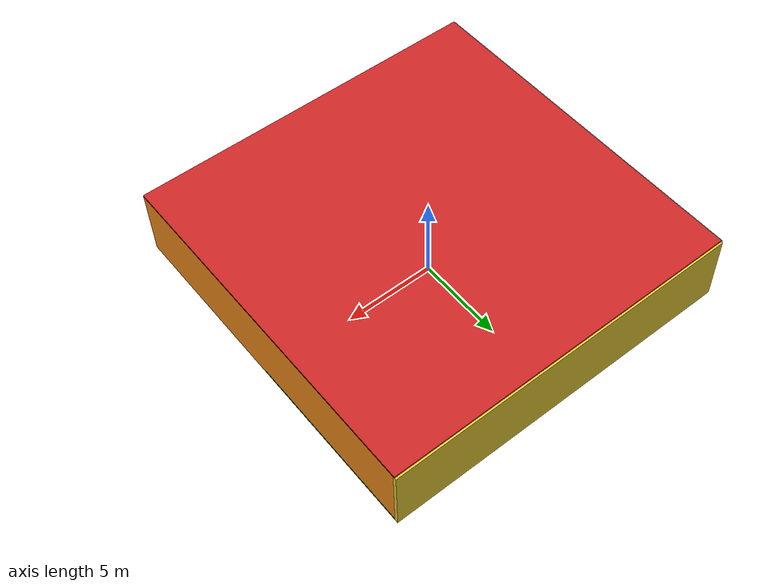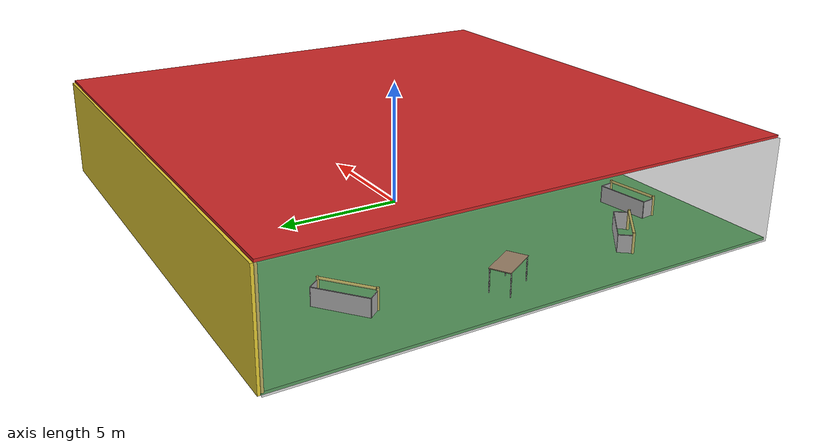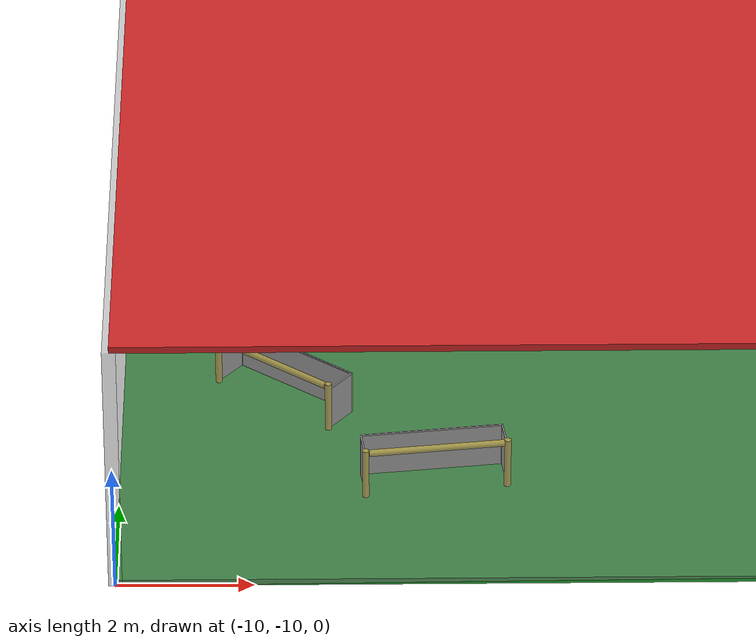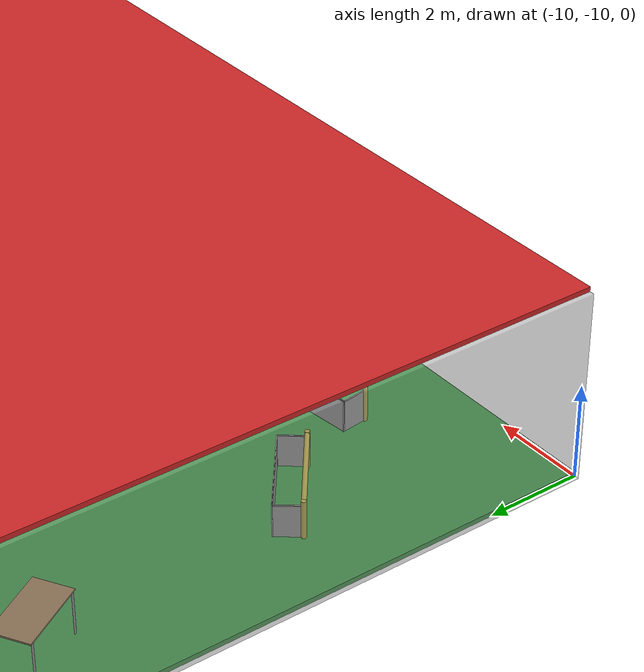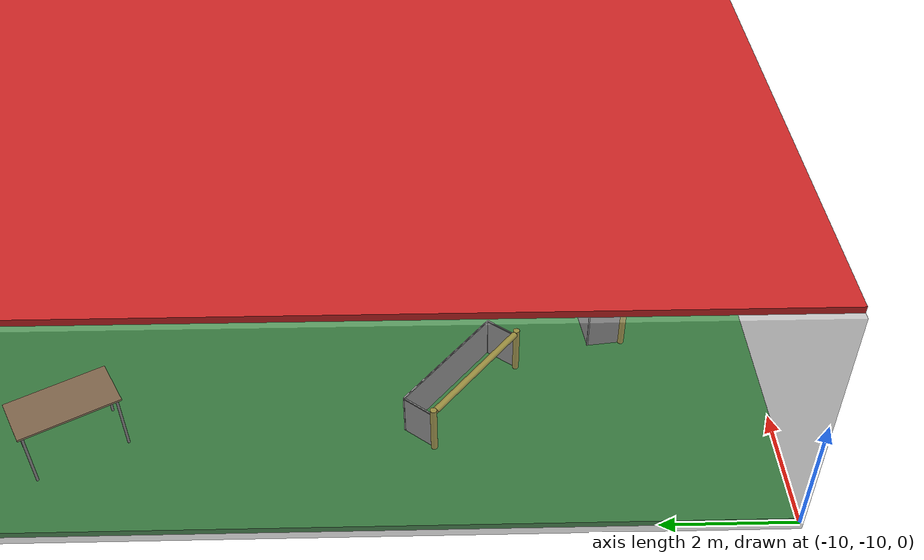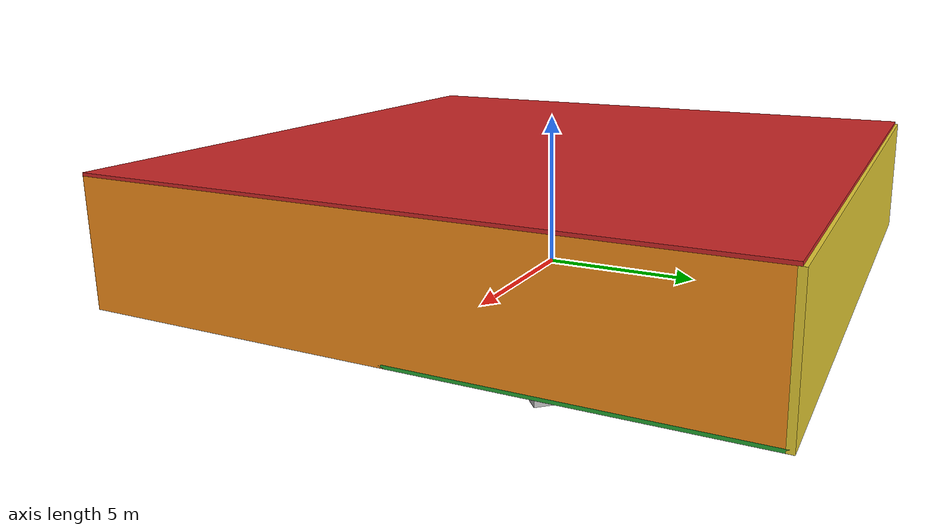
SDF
<sdf version="1.4">
 <world name="default">
  <physics type="ode">
   <max_step_size>0.001</max_step_size>
   <real_time_factor>1</real_time_factor>
   <real_time_update_rate>1000</real_time_update_rate>
   <gravity>0 0 -9.8</gravity>
  </physics>
  <scene><ambient>0.4 0.4 0.4 1</ambient><background>0.7 0.7 0.7 1</background><shadows>1</shadows></scene>
  <model name="Surrounding">
   <static>1</static>
   <link name="Ceiling">
    <collision name="Ceiling_Collision"><geometry><box><size>20 20 0.1</size></box></geometry></collision>
    <visual name="Ceiling_Visual">
     <geometry><box><size>20 20 0.1</size></box></geometry>
     <material>
      <script><uri>file://media/materials/scripts/gazebo.material</uri><name>Gazebo/Red</name></script>
     </material>
    </visual>
    <pose>0 0 4.05 0 0 0</pose>
   </link>
   <link name="Wall_South">
    <collision name="Wall_South_Collision">
     <geometry><box><size>20 0 4</size></box></geometry>
     <pose>0 0 2 0 -0 0</pose>
    </collision>
    <visual name="Wall_South_Visual">
     <pose>0 0 2 0 -0 0</pose>
     <geometry><box><size>20 0 4</size></box></geometry>
     <material>
      <script><uri>file://media/materials/scripts/gazebo.material</uri><name>Gazebo/GreyTransparent</name></script>
     </material>
    </visual>
    <velocity_decay><linear>0</linear><angular>0</angular></velocity_decay>
    <pose>0 -10 0 0 -0 0</pose>
   </link>
   <link name="Wall_East">
    <collision name="Wall_21_Collision">
     <geometry><box><size>20 0 4</size></box></geometry>
     <pose>0 0 2 0 -0 0</pose>
    </collision>
    <visual name="Wall_21_Visual">
     <pose>0 0 2 0 -0 0</pose>
     <geometry><box><size>20 0 4</size></box></geometry>
     <material>
      <script><uri>file://media/materials/scripts/gazebo.material</uri><name>Gazebo/Orange</name></script>
     </material>
    </visual>
    <velocity_decay><linear>0</linear><angular>0</angular></velocity_decay>
    <pose>10 0 0 0 -0 1.5708</pose>
   </link>
   <link name="Wall_North">
    <collision name="Wall_22_Collision">
     <geometry><box><size>20 0.2 4</size></box></geometry>
     <pose>0 0 2 0 -0 0</pose>
    </collision>
    <visual name="Wall_22_Visual">
     <pose>0 0 2 0 -0 0</pose>
     <geometry><box><size>20 0.2 4</size></box></geometry>
     <material>
      <script><uri>file://media/materials/scripts/gazebo.material</uri><name>Gazebo/ZincYellow</name></script>
     </material>
    </visual>
    <velocity_decay><linear>0</linear><angular>0</angular></velocity_decay>
    <pose>0 10 0 0 -0 0</pose>
   </link>
   <link name="Wall_West">
    <collision name="Wall_23_Collision">
     <geometry><box><size>20 0.2 4</size></box></geometry>
     <pose>0 0 2 0 -0 0</pose>
    </collision>
    <visual name="Wall_23_Visual">
     <pose>0 0 2 0 -0 0</pose>
     <geometry><box><size>20 0.2 4</size></box></geometry>
     <material>
      <script><uri>file://media/materials/scripts/gazebo.material</uri><name>Gazebo/GreyTransparent</name></script>
     </material>
    </visual>
    <velocity_decay><linear>0</linear><angular>0</angular></velocity_decay>
    <pose>-10 0 0 0 0 -1.5708</pose>
   </link>
   <link name="Ground_link">
    <collision name="collision">
     <pose>0 0 .05 0 -0 0</pose>
     <geometry><box><size>20 20 0.1</size></box></geometry>
    </collision>
    <visual name="visual">
     <pose>0 0 .05 0 -0 0</pose>
     <geometry><box><size>20 20 0.1</size></box></geometry>
     <material>
      <script><uri>file://media/materials/scripts/gazebo.material</uri><name>Gazebo/Green</name></script>
     </material>
    </visual>
   </link>
   <static>1</static>
  </model>
  <spherical_coordinates>
   <surface_model>EARTH_WGS84</surface_model>
   <latitude_deg>0</latitude_deg>
   <longitude_deg>0</longitude_deg>
   <elevation>0</elevation>
   <heading_deg>0</heading_deg>
  </spherical_coordinates>
  <light name="lightball_0" type="diffuse">
   <diffuse>0.8 0.8 0.8 1</diffuse>
   <specular>0.2 0.2 0.2 1</specular>
   <attenuation>
    <range>100</range>
    <constant>0.7</constant>
    <linear>0.01</linear>
    <quadratic>0.001</quadratic>
   </attenuation>
   <direction>-0.5 0.1 -0.9</direction>
   <pose>8.74033953218 -4.71491004687 3.19178122387 0 0 0</pose>
  </light>
  <light name="lightball_1" type="diffuse">
   <diffuse>0.8 0.8 0.8 1</diffuse>
   <specular>0.2 0.2 0.2 1</specular>
   <attenuation>
    <range>100</range>
    <constant>0.7</constant>
    <linear>0.01</linear>
    <quadratic>0.001</quadratic>
   </attenuation>
   <direction>-0.5 0.1 -0.9</direction>
   <pose>-0.349824840398 8.79881967663 0.90798097431 0 0 0</pose>
  </light>
  <light name="lightball_2" type="diffuse">
   <diffuse>0.8 0.8 0.8 1</diffuse>
   <specular>0.2 0.2 0.2 1</specular>
   <attenuation>
    <range>100</range>
    <constant>0.7</constant>
    <linear>0.01</linear>
    <quadratic>0.001</quadratic>
   </attenuation>
   <direction>-0.5 0.1 -0.9</direction>
   <pose>-2.45586015541 -6.24749938913 1.40265856437 0 0 0</pose>
  </light>
  <light name="lightball_3" type="diffuse">
   <diffuse>0.8 0.8 0.8 1</diffuse>
   <specular>0.2 0.2 0.2 1</specular>
   <attenuation>
    <range>100</range>
    <constant>0.7</constant>
    <linear>0.01</linear>
    <quadratic>0.001</quadratic>
   </attenuation>
   <direction>-0.5 0.1 -0.9</direction>
   <pose>4.26668485126 9.51603633006 0.588185106467 0 0 0</pose>
  </light>
  <light name="lightball_4" type="diffuse">
   <diffuse>0.8 0.8 0.8 1</diffuse>
   <specular>0.2 0.2 0.2 1</specular>
   <attenuation>
    <range>100</range>
    <constant>0.7</constant>
    <linear>0.01</linear>
    <quadratic>0.001</quadratic>
   </attenuation>
   <direction>-0.5 0.1 -0.9</direction>
   <pose>-6.14121235711 -5.68418221723 3.13919818339 0 0 0</pose>
  </light>
  <light name="lightball_5" type="diffuse">
   <diffuse>0.8 0.8 0.8 1</diffuse>
   <specular>0.2 0.2 0.2 1</specular>
   <attenuation>
    <range>100</range>
    <constant>0.7</constant>
    <linear>0.01</linear>
    <quadratic>0.001</quadratic>
   </attenuation>
   <direction>-0.5 0.1 -0.9</direction>
   <pose>0.31814173422 -4.34681942749 0.942831964047 0 0 0</pose>
  </light>
  <light name="lightball_6" type="diffuse">
   <diffuse>0.8 0.8 0.8 1</diffuse>
   <specular>0.2 0.2 0.2 1</specular>
   <attenuation>
    <range>100</range>
    <constant>0.7</constant>
    <linear>0.01</linear>
    <quadratic>0.001</quadratic>
   </attenuation>
   <direction>-0.5 0.1 -0.9</direction>
   <pose>-5.53606313887 -1.84569356381 2.17414733842 0 0 0</pose>
  </light>
  <include>
   <uri>model://robocup_3Dsim_goal</uri>
   <pose>-7.75028864723 -5.49797603401 0 0 0 0.903728386326</pose>
  </include>
  <include><uri>model://table</uri><pose>-8.39715158322 0.518284719364 0 0 0 2.10590247631</pose></include>
  <include>
   <uri>model://robocup_3Dsim_goal</uri>
   <pose>-6.80568019736 5.6699186374 0 0 0 2.24648462326</pose>
  </include>
  <include>
   <uri>model://robocup_3Dsim_goal</uri>
   <pose>-5.34082333659 -7.78329372727 0 0 0 1.69434702922</pose>
  </include>
  <include><uri>model://table</uri><pose>7.17032923649 -7.94644060232 0 0 0 2.3839860114</pose></include>
  <include>
   <uri>model://construction_cone</uri>
   <pose>7.19728700326 1.39174705607 0 0 0 2.75239792276</pose>
  </include>
  <include>
   <uri>model://textured_shapes</uri>
   <pose>7.69610535722 5.05157631608 0 0 0 0.741310993852</pose>
  </include>
 </world>
</sdf>

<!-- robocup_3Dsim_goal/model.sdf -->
<sdf version="1.5">
  <model name="robocup_3d_goal">
    <static>true</static>
    <link name="left_post">
      <pose>0 1.05 0.45 0 0 0</pose>
      <collision name="collision">
        <geometry>
          <cylinder>
            <radius>0.05</radius>
            <length>0.9</length>
          </cylinder>
        </geometry>
      </collision>
      <visual name="visual">
        <geometry>
          <cylinder>
            <radius>0.05</radius>
            <length>0.9</length>
          </cylinder>
        </geometry>
        <material>
          <script>
            <uri>file://media/materials/scripts/gazebo.material</uri>
            <name>Gazebo/ZincYellow</name>
          </script>
        </material>
      </visual>
    </link>
    <link name="left_support_horiz_lower">
      <pose>0.30 1.05 0.01 0 0 0</pose>
      <collision name="collision">
        <geometry>
          <box>
            <size>0.50 0.02 0.02</size>
          </box>
        </geometry>
      </collision>
      <visual name="visual">
        <geometry>
          <box>
            <size>0.50 0.02 0.02</size>
          </box>
        </geometry>
        <material>
          <script>
            <uri>file://media/materials/scripts/gazebo.material</uri>
            <name>Gazebo/White</name>
          </script>
        </material>
      </visual>
    </link>
    <link name="left_support_horiz_upper">
      <pose>0.30 1.05 0.79 0 0 0</pose>
      <collision name="collision">
        <geometry>
          <box>
            <size>0.50 0.02 0.02</size>
          </box>
        </geometry>
      </collision>
      <visual name="visual">
        <geometry>
          <box>
            <size>0.50 0.02 0.02</size>
          </box>
        </geometry>
        <material>
          <script>
            <uri>file://media/materials/scripts/gazebo.material</uri>
            <name>Gazebo/White</name>
          </script>
        </material>
      </visual>
    </link>
    <link name="left_support_vertical">
      <pose>0.56 1.05 0.4 0 1.5708 0</pose>
      <collision name="collision">
        <geometry>
          <box>
            <size>0.80 0.02 0.02</size>
          </box>
        </geometry>
      </collision>
      <visual name="visual">
        <geometry>
          <box>
            <size>0.80 0.02 0.02</size>
          </box>
        </geometry>
        <material>
          <script>
            <uri>file://media/materials/scripts/gazebo.material</uri>
            <name>Gazebo/White</name>
          </script>
        </material>
      </visual>
    </link>
    <link name="right_support_horiz_lower">
      <pose>0.30 -1.05 0.01 0 0 0</pose>
      <collision name="collision">
        <geometry>
          <box>
            <size>0.50 0.02 0.02</size>
          </box>
        </geometry>
      </collision>
      <visual name="visual">
        <geometry>
          <box>
            <size>0.50 0.02 0.02</size>
          </box>
        </geometry>
        <material>
          <script>
            <uri>file://media/materials/scripts/gazebo.material</uri>
            <name>Gazebo/White</name>
          </script>
        </material>
      </visual>
    </link>
    <link name="right_support_horiz_upper">
      <pose>0.30 -1.05 0.79 0 0 0</pose>
      <collision name="collision">
        <geometry>
          <box>
            <size>0.50 0.02 0.02</size>
          </box>
        </geometry>
      </collision>
      <visual name="visual">
        <geometry>
          <box>
            <size>0.50 0.02 0.02</size>
          </box>
        </geometry>
        <material>
          <script>
            <uri>file://media/materials/scripts/gazebo.material</uri>
            <name>Gazebo/White</name>
          </script>
        </material>
      </visual>
    </link>
    <link name="right_support_vertical">
      <pose>0.56 -1.05 0.4 0 1.5708 0</pose>
      <collision name="collision">
        <geometry>
          <box>
            <size>0.80 0.02 0.02</size>
          </box>
        </geometry>
      </collision>
      <visual name="visual">
        <geometry>
          <box>
            <size>0.80 0.02 0.02</size>
          </box>
        </geometry>
        <material>
          <script>
            <uri>file://media/materials/scripts/gazebo.material</uri>
            <name>Gazebo/White</name>
          </script>
        </material>
      </visual>
    </link>
    <link name="center_support_horiz_lower">
      <pose>0.56 0 0.01 0 1.5708 0</pose>
      <collision name="collision">
        <geometry>
          <box>
            <size>0.02 2.08 0.02</size>
          </box>
        </geometry>
      </collision>
      <visual name="visual">
        <geometry>
          <box>
            <size>0.02 2.08 0.02</size>
          </box>
        </geometry>
        <material>
          <script>
            <uri>file://media/materials/scripts/gazebo.material</uri>
            <name>Gazebo/White</name>
          </script>
        </material>
      </visual>
    </link>
    <link name="center_support_horiz_upper">
      <pose>0.56 0 0.79 0 1.5708 0</pose>
      <collision name="collision">
        <geometry>
          <box>
            <size>0.02 2.08 0.02</size>
          </box>
        </geometry>
      </collision>
      <visual name="visual">
        <geometry>
          <box>
            <size>0.02 2.08 0.02</size>
          </box>
        </geometry>
        <material>
          <script>
            <uri>file://media/materials/scripts/gazebo.material</uri>
            <name>Gazebo/White</name>
          </script>
        </material>
      </visual>
    </link>
    <link name="right_post">
      <pose>0 -1.05 0.45 0 0 0</pose>
      <collision name="collision">
        <geometry>
          <cylinder>
            <radius>0.05</radius>
            <length>0.9</length>
          </cylinder>
        </geometry>
      </collision>
      <visual name="visual">
        <geometry>
          <cylinder>
            <radius>0.05</radius>
            <length>0.9</length>
          </cylinder>
        </geometry>
        <material>
          <script>
            <uri>file://media/materials/scripts/gazebo.material</uri>
            <name>Gazebo/ZincYellow</name>
          </script>
        </material>
      </visual>
    </link>
    <link name="crossbar">
      <pose>0 0 0.85 1.57 1.57 0</pose>
      <collision name="collision">
        <geometry>
          <cylinder>
            <radius>0.05</radius>
            <length>2.0</length>
          </cylinder>
        </geometry>
      </collision>
      <visual name="visual">
        <geometry>
          <cylinder>
            <radius>0.05</radius>
            <length>2.0</length>
          </cylinder>
        </geometry>
        <material>
          <script>
            <uri>file://media/materials/scripts/gazebo.material</uri>
            <name>Gazebo/ZincYellow</name>
          </script>
        </material>
      </visual>
    </link>
    <link name="center_net">
      <pose>0.56 0 0.40 0 0 0</pose>
      <collision name="collision">
        <geometry>
          <box>
            <size>0.01 2.1 0.80</size>
          </box>
        </geometry>
      </collision>
      <visual name="visual">
        <geometry>
          <box>
            <size>0.01 2.1 0.80</size>
          </box>
        </geometry>
        <material>
          <script>
            <uri>model://../model_source/models/robocup09_spl_field/materials/scripts/</uri>
            <uri>model://../model_source/models/robocup09_spl_field/materials/textures/</uri>
            <name>RoboCup/Net</name>
          </script>
        </material>
      </visual>
    </link>
    <link name="left_net">
      <pose>0.30 1.05 0.40 0 0 0</pose>
      <collision name="collision">
        <geometry>
          <box>
            <size>0.50 0.01 0.76</size>
          </box>
        </geometry>
      </collision>
      <visual name="visual">
        <geometry>
          <box>
            <size>0.50 0.01 0.76</size>
          </box>
        </geometry>
        <material>
          <script>
            <uri>model://../model_source/models/robocup09_spl_field/materials/scripts/</uri>
            <uri>model://../model_source/models/robocup09_spl_field/materials/textures/</uri>
            <name>RoboCup/Net</name>
          </script>
        </material>
      </visual>
    </link>
    <link name="right_net">
      <pose>0.30 -1.05 0.40 0 0 0</pose>
      <collision name="collision">
        <geometry>
          <box>
            <size>0.50 0.01 0.76</size>
          </box>
        </geometry>
      </collision>
      <visual name="visual">
        <geometry>
          <box>
            <size>0.50 0.01 0.76</size>
          </box>
        </geometry>
        <material>
          <script>
            <uri>model://../model_source/models/robocup09_spl_field/materials/scripts/</uri>
            <uri>model://../model_source/models/robocup09_spl_field/materials/textures/</uri>
            <name>RoboCup/Net</name>
          </script>
        </material>
      </visual>
    </link>
  </model>
</sdf>

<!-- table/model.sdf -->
<sdf version="1.5">
  <model name="table">
    <static>true</static>
    <link name="link">
      <collision name="surface">
        <pose>0 0 1.0 0 0 0</pose>
        <geometry>
          <box>
            <size>1.5 0.8 0.03</size>
          </box>
        </geometry>
        <surface>
          <friction>
            <ode>
              <mu>0.6</mu>
              <mu2>0.6</mu2>
            </ode>
          </friction>
        </surface>
      </collision>
      <visual name="visual1">
        <pose>0 0 1.0 0 0 0</pose>
        <geometry>
          <box>
            <size>1.5 0.8 0.03</size>
          </box>
        </geometry>
        <material>
          <script>
            <uri>model://media/materials/scripts/gazebo.material</uri>
            <name>Gazebo/Wood</name>
          </script>
        </material>
      </visual>
      <collision name="front_left_leg">
        <pose>0.68 0.38 0.5 0 0 0</pose>
        <geometry>
          <cylinder>
            <radius>0.02</radius>
            <length>1.0</length>
          </cylinder>
        </geometry>
      </collision>
      <visual name="front_left_leg">
        <pose>0.68 0.38 0.5 0 0 0</pose>
        <geometry>
          <cylinder>
            <radius>0.02</radius>
            <length>1.0</length>
          </cylinder>
        </geometry>
        <material>
          <script>
            <uri>model://media/materials/scripts/gazebo.material</uri>
            <name>Gazebo/Grey</name>
          </script>
        </material>
      </visual>
      <collision name="front_right_leg">
        <pose>0.68 -0.38 0.5 0 0 0</pose>
        <geometry>
          <cylinder>
            <radius>0.02</radius>
            <length>1.0</length>
          </cylinder>
        </geometry>
      </collision>
      <visual name="front_right_leg">
        <pose>0.68 -0.38 0.5 0 0 0</pose>
        <geometry>
          <cylinder>
            <radius>0.02</radius>
            <length>1.0</length>
          </cylinder>
        </geometry>
        <material>
          <script>
            <uri>model://media/materials/scripts/gazebo.material</uri>
            <name>Gazebo/Grey</name>
          </script>
        </material>
      </visual>
      <collision name="back_right_leg">
        <pose>-0.68 -0.38 0.5 0 0 0</pose>
        <geometry>
          <cylinder>
            <radius>0.02</radius>
            <length>1.0</length>
          </cylinder>
        </geometry>
      </collision>
      <visual name="back_right_leg">
        <pose>-0.68 -0.38 0.5 0 0 0</pose>
        <geometry>
          <cylinder>
            <radius>0.02</radius>
            <length>1.0</length>
          </cylinder>
        </geometry>
        <material>
          <script>
            <uri>model://media/materials/scripts/gazebo.material</uri>
            <name>Gazebo/Grey</name>
          </script>
        </material>
      </visual>
      <collision name="back_left_leg">
        <pose>-0.68 0.38 0.5 0 0 0</pose>
        <geometry>
          <cylinder>
            <radius>0.02</radius>
            <length>1.0</length>
          </cylinder>
        </geometry>
      </collision>
      <visual name="back_left_leg">
        <pose>-0.68 0.38 0.5 0 0 0</pose>
        <geometry>
          <cylinder>
            <radius>0.02</radius>
            <length>1.0</length>
          </cylinder>
        </geometry>
        <material>
          <script>
            <uri>model://media/materials/scripts/gazebo.material</uri>
            <name>Gazebo/Grey</name>
          </script>
        </material>
      </visual>
    </link>
  </model>
</sdf>

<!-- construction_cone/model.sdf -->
<sdf version="1.5">
  <model name="Construction Cone">
    <link name="link">
      <collision name="collision">
        <geometry>
          <mesh>
            <scale>10 10 10</scale>
            <uri>file://isr-testbed/construction_cone/meshes/construction_cone.dae</uri>
          </mesh>
        </geometry>
      </collision>
      <visual name="visual">
        <geometry>
          <mesh>
            <scale>10 10 10</scale>
            <uri>file://isr-testbed/construction_cone/meshes/construction_cone.dae</uri>
          </mesh>
        </geometry>
      </visual>
    </link>
  </model>
</sdf>

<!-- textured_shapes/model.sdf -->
<sdf version="1.6">
  <model name="textured_shapes">
    <pose>0 0 0.5 0 0 0</pose>
    <link name="box">
      <pose>0 -1.5 0 0 0 0</pose>
      <collision name="collision">
        <geometry>
          <box>
            <size>1 1 1</size>
          </box>
        </geometry>
      </collision>
      <visual name="visual">
        <geometry>
          <box>
            <size>1 1 1</size>
          </box>
        </geometry>
        <material>
          <script>
            <uri>model://../model_source/models/textured_shapes/materials/scripts</uri>
            <uri>model://../model_source/models/textured_shapes/materials/textures</uri>
            <name>TexturedShape/Squares</name>
          </script>
        </material>
      </visual>
    </link>
    <link name="sphere">
      <collision name="collision">
        <geometry>
          <sphere>
            <radius>0.5</radius>
          </sphere>
        </geometry>
      </collision>
      <visual name="visual">
        <geometry>
          <sphere>
            <radius>0.5</radius>
          </sphere>
        </geometry>
        <material>
          <script>
            <uri>model://../model_source/models/textured_shapes/materials/scripts</uri>
            <uri>model://../model_source/models/textured_shapes/materials/textures</uri>
            <name>TexturedShape/Squares</name>
          </script>
        </material>
      </visual>
    </link>
    <link name="cylinder">
      <pose>0 1.5 0 0 0 0</pose>
      <collision name="collision">
        <geometry>
          <cylinder>
            <radius>0.5</radius>
            <length>1</length>
          </cylinder>
        </geometry>
      </collision>
      <visual name="visual">
        <geometry>
          <cylinder>
            <radius>0.5</radius>
            <length>1</length>
          </cylinder>
        </geometry>
        <material>
          <script>
            <uri>model://../model_source/models/textured_shapes/materials/scripts</uri>
            <uri>model://../model_source/models/textured_shapes/materials/textures</uri>
            <name>TexturedShape/Squares</name>
          </script>
        </material>
      </visual>
    </link>
  </model>
</sdf>
